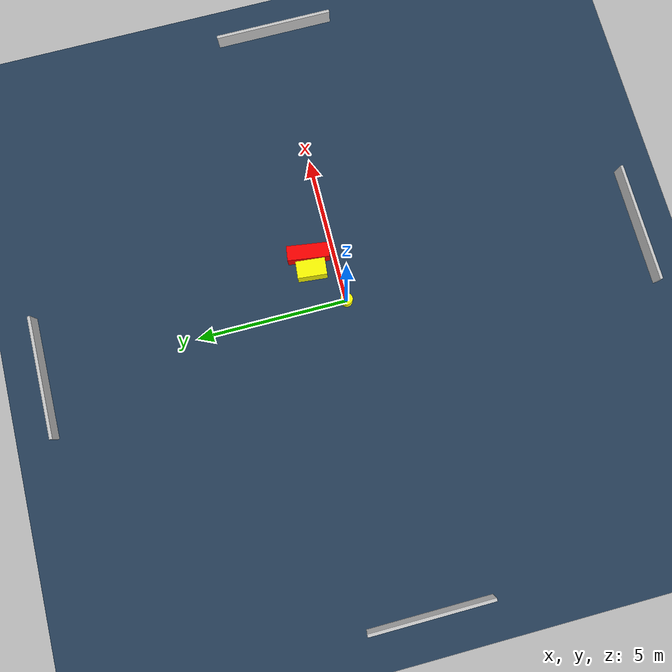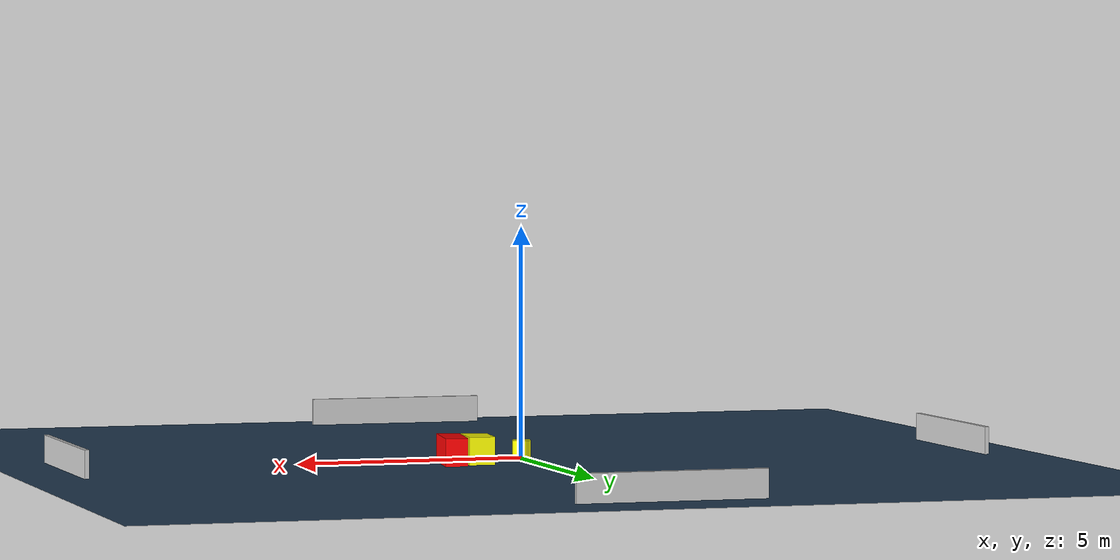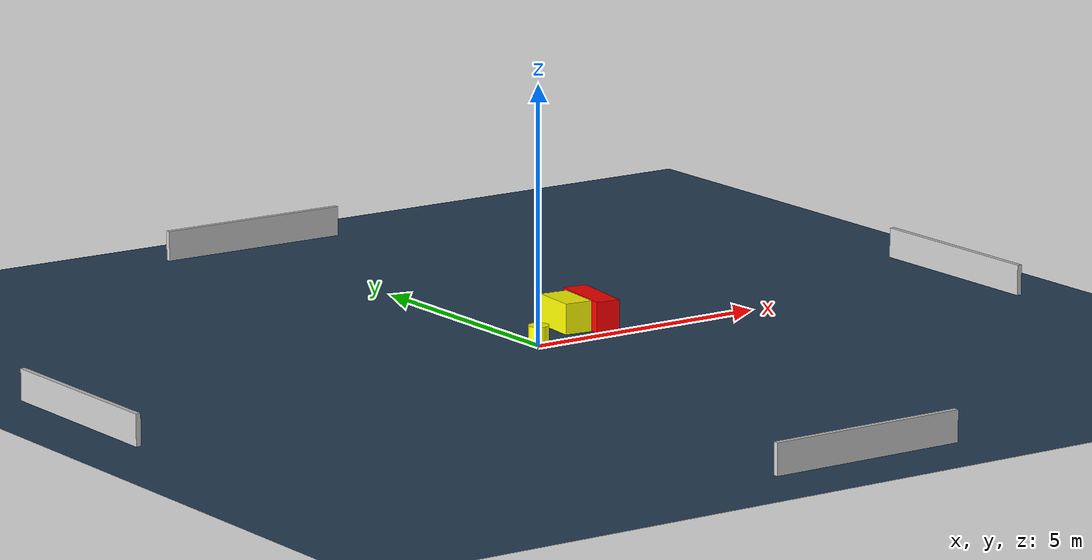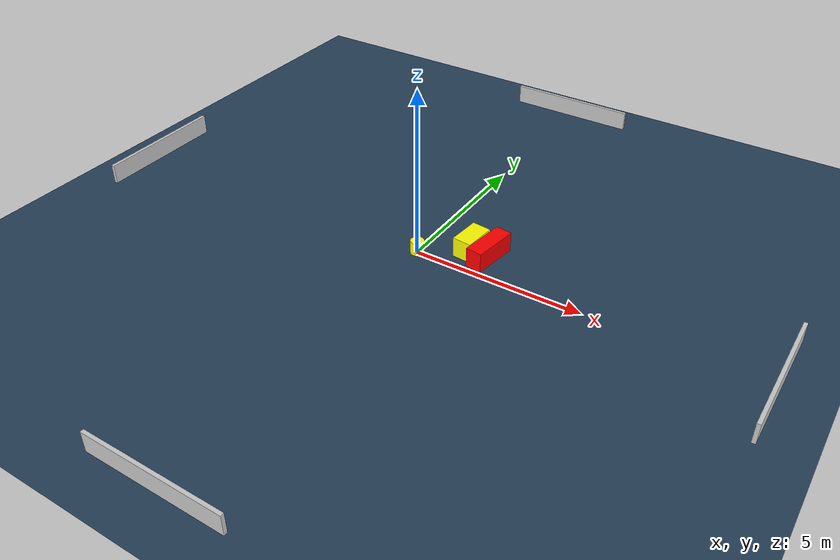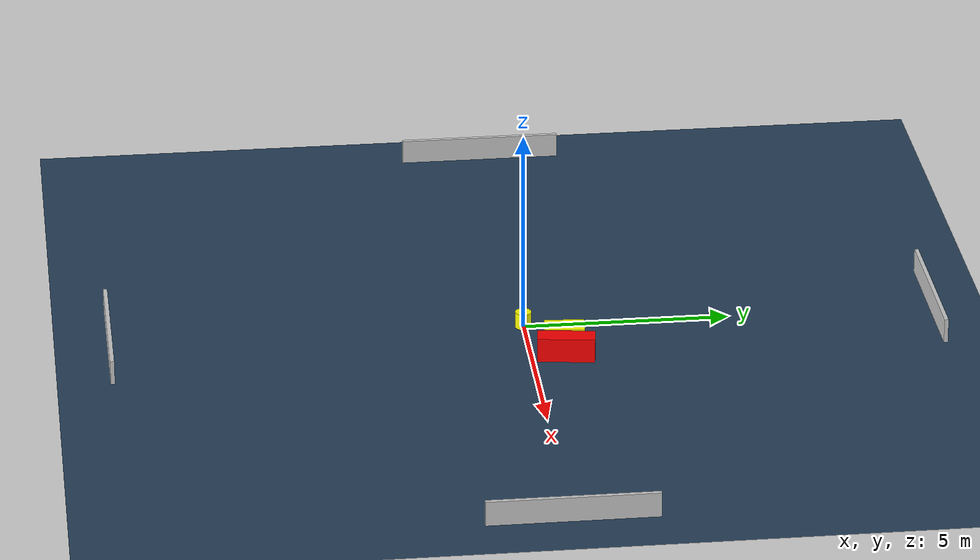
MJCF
<?xml version="1.0" ?>
<mujoco model="generated_environment">
  <option timestep="0.01" integrator="RK4" cone="elliptic"/>
  <default>
    <geom density="1"/>
  </default>
  <asset>
    <texture builtin="gradient" height="3072" name="skybox" rgb1="0.3 0.5 0.7" rgb2="0 0 0" type="skybox" width="512"/>
    <texture builtin="checker" height="300" name="groundplane" rgb1="0.2 0.3 0.4" rgb2="0.1 0.2 0.3" type="2d" width="300"/>
    <material name="groundplane" reflectance="0.2" texrepeat="5 5" texture="groundplane"/>
  </asset>
  <worldbody>
    <light dir="0 0 -1" directional="true" pos="0 0 1.5"/>
    <geom condim="3" friction="0.5 0.005 0.001" material="groundplane" name="floor" pos="0 0 0" size="0 0 0.05" type="plane"/>
    <body name="walls">
      <geom name="wall_1" condim="4" pos="-10.0 0.0 0.3" rgba="0.800000011920929 0.800000011920929 0.800000011920929 1.0" size="0.05 2.0 0.3" type="box"/>
      <geom name="wall_2" condim="4" pos="10.0 0.0 0.3" rgba="0.800000011920929 0.800000011920929 0.800000011920929 1.0" size="0.05 2.0 0.3" type="box"/>
      <geom name="wall_3" condim="4" pos="0.0 -10.0 0.3" rgba="0.800000011920929 0.800000011920929 0.800000011920929 1.0" size="2.0 0.05 0.3" type="box"/>
      <geom name="wall_4" condim="4" pos="0.0 10.0 0.3" rgba="0.800000011920929 0.800000011920929 0.800000011920929 1.0" size="2.0 0.05 0.3" type="box"/>
    </body>
    <body name="robot">
      <joint name="joint_x" type="slide" pos="0 0 0" axis="1 0 0"/>
      <joint name="joint_y" type="slide" pos="0 0 0" axis="0 1 0"/>
      <geom name="robot" type="cylinder" pos="0.0 0.0 0.2" size="0.2 0.2 0.0" mass="5.0" friction="1.0 0.005 0.0001" condim="4" rgba="1.0 1.0 0.0 1.0"/>
    </body>
    <body name="obstacle_1_movable">
      <geom name="obstacle_1_movable" condim="4" pos="1.24096421711734 0.8587465736046439 0.3" euler="0 0 174.4203797831446" friction="0.0 0.005 0.001" rgba="1.0 1.0 0.0 1.0" size="0.282243743983987 0.4828205267030911 0.3" type="box" mass="0.1"/>
      <joint type="free"/>
    </body>
    <body name="obstacle_2_static">
      <geom name="obstacle_2_static" condim="4" pos="1.8059948481064276 0.829996315684253 0.3" euler="0 0 351.73697052271297" friction="0.0 0.005 0.001" rgba="1.0 0.0 0.0 1.0" size="0.24261460511786104 0.6902750630884703 0.3" type="box"/>
    </body>
  </worldbody>
  <actuator>
    <motor name="actuator_x" joint="joint_x" gear="1" ctrlrange="-1 1"/>
    <motor name="actuator_y" joint="joint_y" gear="1" ctrlrange="-1 1"/>
  </actuator>
</mujoco>
